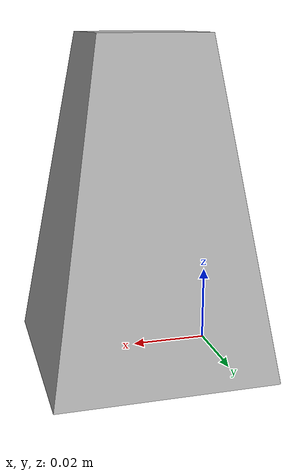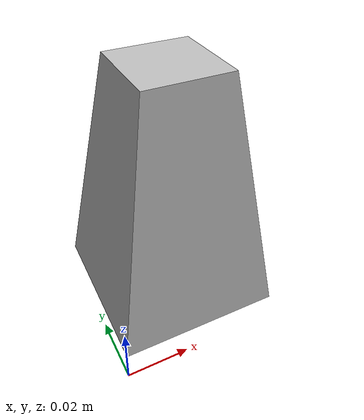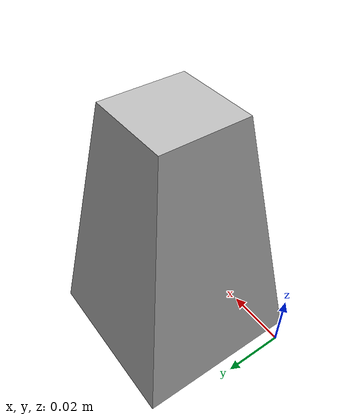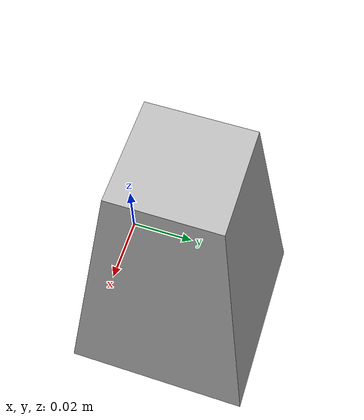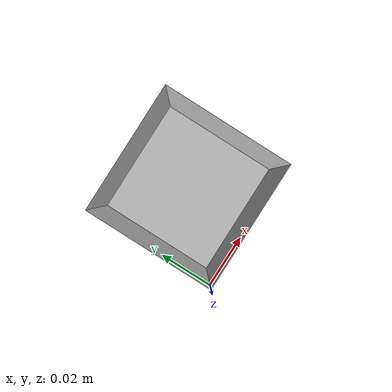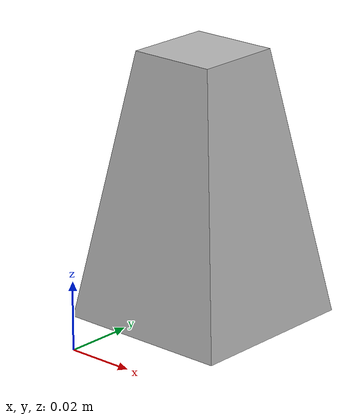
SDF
<sdf version='1.6'>
  <model name='fo_trustum'>
    <link name='object (6)'>
      <pose frame=''>0 0 0.01 0 -0 0</pose>
      <inertial>
        <pose frame=''>0.025 0.025 0.029464 0 -0 0</pose>
        <mass>0.010938</mass>
        <inertia>
          <ixx>6.08085e-05</ixx>
          <ixy>8.14663e-21</ixy>
          <ixz>-6.09159e-21</ixz>
          <iyy>6.08085e-05</iyy>
          <iyz>-6.02182e-21</iyz>
          <izz>3.02734e-05</izz>
        </inertia>
      </inertial>
      <collision name='object_collision'>
        <pose frame=''>0 0 0 1.5708 -0 0</pose>
        <geometry>
          <mesh>
            <scale>1 1 1</scale>
            <uri>model://fo_trustum/untitled.dae</uri>
          </mesh>
        </geometry>
        <surface>
          <friction>
            <ode>
              <mu>1.0</mu>
              <mu2>1.0</mu2>
            </ode>
          </friction>
          <contact>
            <ode>
              <kp>100000.0</kp>
              <kd>1.0</kd>
              <min_depth>0.0000001</min_depth>
              <max_vel>0.1</max_vel>
            </ode>
          </contact>
        </surface>
      </collision>
      <visual name='object_visual'>
        <pose frame=''>0 0 0 1.5708 -0 0</pose>
        <geometry>
          <mesh>
            <scale>1 1 1</scale>
            <uri>model://fo_trustum/untitled.dae</uri>
          </mesh>
        </geometry>
      </visual>
    </link>
  </model>
</sdf>
